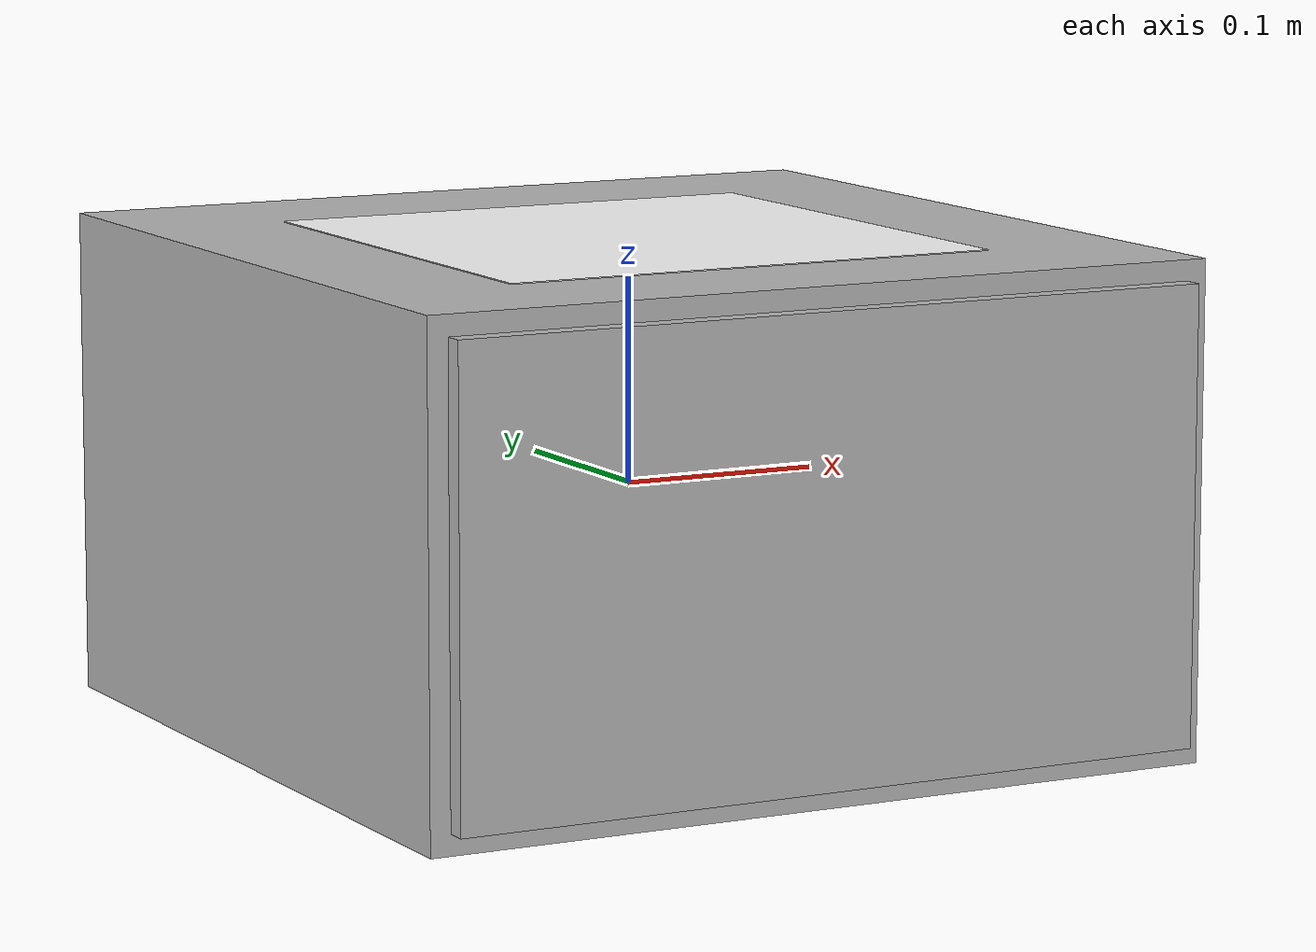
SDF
<?xml version="1.0"?>

<sdf version="1.10">

    <model name="docking_station">

        <pose>0 0 0 0 0 0</pose>
        <self_collide>false</self_collide>
        <static>false</static>

        <link name="shell">

            <pose>0 0 0 0 0 0</pose>

            <inertial>
                <pose>0 0 0 0 0 0</pose>
                <mass>4.0</mass>
                <inertia>
                    <ixx>0.02</ixx>
                    <ixy>0</ixy>
                    <ixz>0</ixz>
                    <iyy>0.02</iyy>
                    <iyz>0</iyz>
                    <izz>0.02</izz>
                </inertia>
            </inertial>

            <collision name="shell_collision">
                <pose>0.0 0.0 0.0 0 0 0</pose>
                <geometry>
                    <mesh>
                        <scale>0.001 0.001 0.001</scale>
                        <uri>meshes/shell.obj</uri>
                    </mesh>
                </geometry>
            </collision>

            <visual name="shell_visual">
                <pose>0 0 0 0 0 0</pose>
                <geometry>
                    <mesh>
                        <scale>0.001 0.001 0.001</scale>
                        <uri>meshes/shell.obj</uri>
                    </mesh>
                </geometry>
                <cast_shadows>false</cast_shadows>
            </visual>

            <visual name="shell_face">
                <pose>0.0 0.0 0.12 0 0 0</pose>
                <geometry>
                    <box>
                      <size>0.25 0.25 0.001</size>
                    </box>
                </geometry>
                <material>
                    <diffuse>1.0 1.0 1.0 1.0</diffuse>
                    <pbr>
                        <metal>
                            <albedo_map>materials/textures/tag36h11-2.png</albedo_map>
                            <metalness>0.0</metalness>
                            <roughness>1.0</roughness>
                        </metal>
                    </pbr>
                </material>
            </visual>

        </link>

        <link name="tray">

            <pose>0 0 0 0 0 0</pose>

            <inertial>
                <pose>0 0 0 0 0 0</pose>
                <mass>1.0</mass>
                <inertia>
                    <ixx>0.01</ixx>
                    <ixy>0</ixy>
                    <ixz>0</ixz>
                    <iyy>0.01</iyy>
                    <iyz>0</iyz>
                    <izz>0.01</izz>
                </inertia>
            </inertial>

            <collision name="tray_collision">
                <pose>0.0 0.0 0.0 0 0 0</pose>
                <geometry>
                    <mesh>
                        <scale>0.001 0.001 0.001</scale>
                        <uri>meshes/tray.obj</uri>
                    </mesh>
                </geometry>
            </collision>

            <visual name="tray_visual">
                <pose>0 0 0 0 0 0</pose>
                <geometry>
                    <mesh>
                        <scale>0.001 0.001 0.001</scale>
                        <uri>meshes/tray.obj</uri>
                    </mesh>
                </geometry>
                <cast_shadows>false</cast_shadows>
            </visual>

            <visual name="tray_face">
                <pose>0.0 -0.12 -0.06 0 0 0</pose>
                <geometry>
                    <box>
                      <size>0.125 0.125 0.001</size>
                    </box>
                </geometry>
                <material>
                    <diffuse>1.0 1.0 1.0 1.0</diffuse>
                    <pbr>
                        <metal>
                            <albedo_map>materials/textures/tag36h11-3.png</albedo_map>
                            <metalness>0.0</metalness>
                            <roughness>1.0</roughness>
                        </metal>
                    </pbr>
                </material>
            </visual>

        </link>

        <joint name="tray_joint" type="prismatic">
            <pose>0 0 0 0 0 0</pose>
            <parent>shell</parent>
            <child>tray</child>
            <axis>
                <xyz>0 1 0</xyz>
                <limit>
                    <lower>-0.4</lower>
                    <upper>0.0</upper>
                    <effort>1000</effort>
                </limit>
                <dynamics>
                    <damping>0.1</damping>
                    <friction>10.0</friction>
                </dynamics>
            </axis>
        </joint>

        <joint name="tray_joint_fixed" type="fixed">
            <pose>0 0 0 0 0 0</pose>
            <parent>world</parent>
            <child>shell</child>
        </joint>

        <plugin filename="gz-sim-joint-controller-system" name="gz::sim::systems::JointController">
            <joint_name>tray_joint</joint_name>
            <use_force_commands>false</use_force_commands>
            <topic>/dock_2/tray_cmd</topic>
            <initial_velocity>0.0</initial_velocity>
        </plugin>

        <plugin filename="gz-sim-joint-state-publisher-system" name="gz::sim::systems::JointStatePublisher">
            <joint_name>tray_joint</joint_name>
            <topic>/dock_2/tray_pos</topic>
            <update_rate>10</update_rate>
        </plugin>

        <plugin name="gz::sim::systems::PosePublisher" filename="gz-sim-pose-publisher-system">
            <use_pose_vector_msg>true</use_pose_vector_msg>
            <publish_nested_model_pose>true</publish_nested_model_pose>
            <publish_collision_pose>false</publish_collision_pose>
            <publish_visual_pose>false</publish_visual_pose>
            <publish_link_pose>false</publish_link_pose>
            <update_frequency>100</update_frequency>
        </plugin>

  </model>

</sdf>
